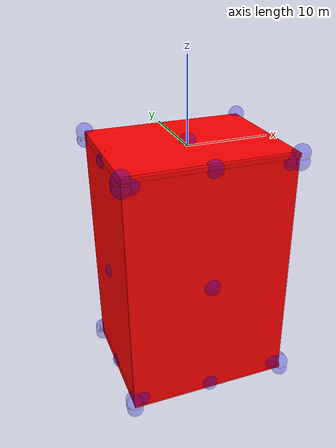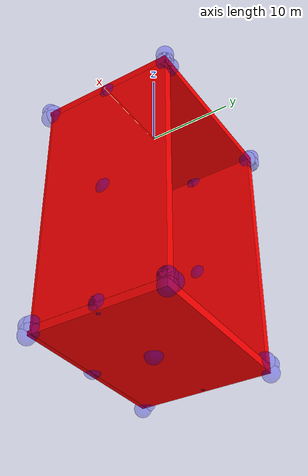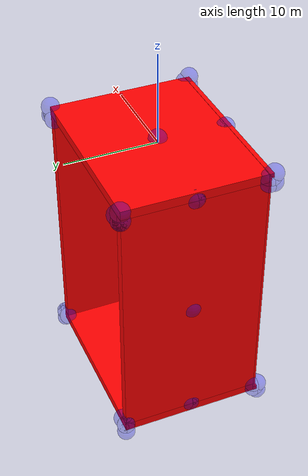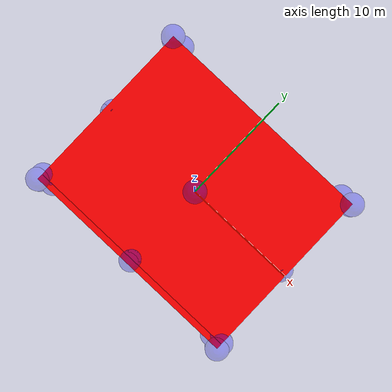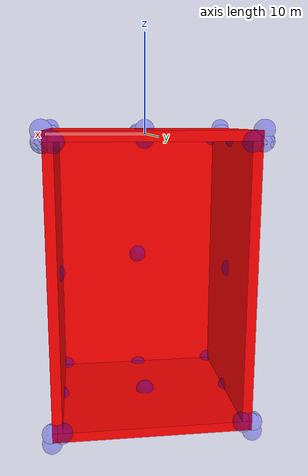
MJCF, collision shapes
<mujoco model="0019_CABINET_AKURUM">
  <asset>
    <mesh file="0.stl" name="part0" scale="1 1 1" />
    <mesh file="4.stl" name="part4" scale="1 1 1" />
    <mesh file="3.stl" name="part3" scale="1 1 1" />
    <mesh file="2.stl" name="part2" scale="1 1 1" />
    <mesh file="1.stl" name="part1" scale="1 1 1" />
  </asset>
  <equality>
    <weld active="false" body1="0_part0" body2="2_part2" solimp="1 1 0.5" solref="0.01 0.3" />
    <weld active="false" body1="0_part0" body2="3_part3" solimp="1 1 0.5" solref="0.01 0.3" />
    <weld active="false" body1="1_part1" body2="2_part2" solimp="1 1 0.5" solref="0.01 0.3" />
    <weld active="false" body1="1_part1" body2="3_part3" solimp="1 1 0.5" solref="0.01 0.3" />
    <weld active="false" body1="0_part0" body2="4_part4" solimp="1 1 0.5" solref="0.01 0.3" />
    <weld active="false" body1="1_part1" body2="4_part4" solimp="1 1 0.5" solref="0.01 0.3" />
  </equality>
  <worldbody>
    <body name="0_part0" pos="0.0 -2e-07 -0.0" quat="1 0 0 0">
      <geom conaffinity="0" contype="0" density="0" mesh="part0" name="0_part0_mesh" pos="0 0 0" rgba="0.82 0.71 0.55 1" type="mesh" />
      <site name="0_part0_horizontal_radius_site" pos="0.0 -2e-07 -0.0" quat="1 0 0 0" rgba="0 0 1 0.3" size="1" />
      <site name="0_part0_top_site" pos="0.0 -1e-07 0.5" quat="1 0 0 0" rgba="0 0 1 0.3" size="1" />
      <site name="0_part0_bottom_site" pos="0.0 -1e-07 -0.5" quat="1 0 0 0" rgba="0 0 1 0.3" size="1" />
      <site name="0_part0_corner_site8" pos="-10.0 8.0 0.5" quat="1 0 0 0" rgba="0 0 1 0.3" size="1" />
      <site name="0_part0_corner_site7" pos="10.0 8.0 0.5" quat="1 0 0 0" rgba="0 0 1 0.3" size="1" />
      <site name="0_part0_corner_site6" pos="10.0 -8.0000003 0.5" quat="1 0 0 0" rgba="0 0 1 0.3" size="1" />
      <site name="0_part0_corner_site5" pos="-10.0 -8.0000003 0.5" quat="1 0 0 0" rgba="0 0 1 0.3" size="1" />
      <site name="0_part0_corner_site4" pos="-10.0 8.0 -0.5" quat="1 0 0 0" rgba="0 0 1 0.3" size="1" />
      <site name="0_part0_corner_site3" pos="10.0 8.0 -0.5" quat="1 0 0 0" rgba="0 0 1 0.3" size="1" />
      <site name="0_part0_corner_site2" pos="10.0 -8.0000003 -0.5" quat="1 0 0 0" rgba="0 0 1 0.3" size="1" />
      <site name="0_part0_corner_site1" pos="-10.0 -8.0000003 -0.5" quat="1 0 0 0" rgba="0 0 1 0.3" size="1" />
      <site name="flat-side,0,180,conn_site4" pos="-9.5 0.125 -0.5" quat="1 0 0 0" rgba="0 0 1 0.3" size="1" />
      <site name="flat-side,0,180,conn_site3" pos="9.45 0.125 -0.5" quat="1 0 0 0" rgba="0 0 1 0.3" size="1" />
      <site name="flat-back,0,conn_site2" pos="0 -7.51 -0.06" quat="0.7071067 0.7071068 0 0" rgba="0 0 1 0.3" size="1" />
      <geom density="50" quat="1 0 0 0" name="noviz_collision_0_part0_0" pos="0 0.28 0.00166" rgba="1 0 0 1" size="10 7.75 0.49" solref="0.001 1" type="box" />
      <geom density="50" quat="1 0 0 0" name="noviz_collision_0_part0_1" pos="0 -7.75 0.22" rgba="1 0 0 1" size="10 0.25 0.25" solref="0.001 1" type="box" />
    </body>
    <body name="4_part4" pos="0.0 -7.6250003 -14.5" quat="1 0 0 0">
      <geom conaffinity="0" contype="0" density="0" mesh="part4" name="4_part4_mesh" pos="0 0 0" rgba="0.82 0.71 0.55 1" type="mesh" />
      <site name="4_part4_horizontal_radius_site" pos="0.0 0.0 0.0" quat="1 0 0 0" rgba="0 0 1 0.3" size="1" />
      <site name="4_part4_top_site" pos="0.0 0.0 14.5" quat="1 0 0 0" rgba="0 0 1 0.3" size="1" />
      <site name="4_part4_bottom_site" pos="0.0 0.0 -14.5" quat="1 0 0 0" rgba="0 0 1 0.3" size="1" />
      <site name="4_part4_corner_site8" pos="-10.0 0.125 14.5" quat="1 0 0 0" rgba="0 0 1 0.3" size="1" />
      <site name="4_part4_corner_site7" pos="10.0 0.125 14.5" quat="1 0 0 0" rgba="0 0 1 0.3" size="1" />
      <site name="4_part4_corner_site6" pos="10.0 -0.125 14.5" quat="1 0 0 0" rgba="0 0 1 0.3" size="1" />
      <site name="4_part4_corner_site5" pos="-10.0 -0.125 14.5" quat="1 0 0 0" rgba="0 0 1 0.3" size="1" />
      <site name="4_part4_corner_site4" pos="-10.0 0.125 -14.5" quat="1 0 0 0" rgba="0 0 1 0.3" size="1" />
      <site name="4_part4_corner_site3" pos="10.0 0.125 -14.5" quat="1 0 0 0" rgba="0 0 1 0.3" size="1" />
      <site name="4_part4_corner_site2" pos="10.0 -0.125 -14.5" quat="1 0 0 0" rgba="0 0 1 0.3" size="1" />
      <site name="4_part4_corner_site1" pos="-10.0 -0.125 -14.5" quat="1 0 0 0" rgba="0 0 1 0.3" size="1" />
      <site name="back-flat,0,conn_site2" pos="0 0.115 14.44" quat="0.7071067 0.7071068 0 0" rgba="0 0 1 0.3" size="1" />
      <site name="back-flat,0,conn_site1" pos="0 0.115 -14.45" quat="0 0 0.7071068 -0.7071067" rgba="0 0 1 0.3" size="1" />
      <geom density="50" quat="1 0 0 0" name="noviz_collision_4_part4_0" pos="0 0 0" rgba="1 0 0 1" size="10 0.125 14.5" solref="0.001 1" type="box" />
    </body>
    <body name="3_part3" pos="9.4999998 0.25 -14.5" quat="1 0 0 0">
      <geom conaffinity="0" contype="0" density="0" mesh="part3" name="3_part3_mesh" pos="0 0 0" rgba="0.82 0.71 0.55 1" type="mesh" />
      <site name="3_part3_horizontal_radius_site" pos="-0.0 0.0 0.0" quat="1 0 0 0" rgba="0 0 1 0.3" size="1" />
      <site name="3_part3_top_site" pos="0.0 0.0 14.0" quat="1 0 0 0" rgba="0 0 1 0.3" size="1" />
      <site name="3_part3_bottom_site" pos="0.0 0.0 -14.0" quat="1 0 0 0" rgba="0 0 1 0.3" size="1" />
      <site name="3_part3_corner_site8" pos="-0.5000002 7.7500005 14.0" quat="1 0 0 0" rgba="0 0 1 0.3" size="1" />
      <site name="3_part3_corner_site7" pos="0.5000002 7.7500005 14.0" quat="1 0 0 0" rgba="0 0 1 0.3" size="1" />
      <site name="3_part3_corner_site6" pos="0.5000002 -7.7500005 14.0" quat="1 0 0 0" rgba="0 0 1 0.3" size="1" />
      <site name="3_part3_corner_site5" pos="-0.5000002 -7.7500005 14.0" quat="1 0 0 0" rgba="0 0 1 0.3" size="1" />
      <site name="3_part3_corner_site4" pos="-0.5000002 7.7500005 -14.0" quat="1 0 0 0" rgba="0 0 1 0.3" size="1" />
      <site name="3_part3_corner_site3" pos="0.5000002 7.7500005 -14.0" quat="1 0 0 0" rgba="0 0 1 0.3" size="1" />
      <site name="3_part3_corner_site2" pos="0.5000002 -7.7500005 -14.0" quat="1 0 0 0" rgba="0 0 1 0.3" size="1" />
      <site name="3_part3_corner_site1" pos="-0.5000002 -7.7500005 -14.0" quat="1 0 0 0" rgba="0 0 1 0.3" size="1" />
      <site name="side-flat,0,180,conn_site3" pos="-0.05 -0.125 14" quat="1 0 0 0" rgba="0 0 1 0.3" size="1" />
      <site name="side-flat,0,180,conn_site1" pos="0.02 -0.125 -14.03" quat="0 0 1 0" rgba="0 0 1 0.3" size="1" />
      <geom density="50" quat="1 0 0 0" name="noviz_collision_3_part3_0" pos="0 0 0" rgba="1 0 0 1" size="0.5 7.75 14" solref="0.001 1" type="box" />
    </body>
    <body name="2_part2" pos="-9.4999997 0.25 -14.5" quat="1 0 0 0">
      <geom conaffinity="0" contype="0" density="0" mesh="part2" name="2_part2_mesh" pos="0 0 0" rgba="0.82 0.71 0.55 1" type="mesh" />
      <site name="2_part2_horizontal_radius_site" pos="-0.0 0.0 -0.0" quat="1 0 0 0" rgba="0 0 1 0.3" size="1" />
      <site name="2_part2_top_site" pos="0.0 0.0 14.0" quat="1 0 0 0" rgba="0 0 1 0.3" size="1" />
      <site name="2_part2_bottom_site" pos="0.0 0.0 -14.0" quat="1 0 0 0" rgba="0 0 1 0.3" size="1" />
      <site name="2_part2_corner_site8" pos="-0.5000003 7.7500005 14.0" quat="1 0 0 0" rgba="0 0 1 0.3" size="1" />
      <site name="2_part2_corner_site7" pos="0.5000003 7.7500005 14.0" quat="1 0 0 0" rgba="0 0 1 0.3" size="1" />
      <site name="2_part2_corner_site6" pos="0.5000003 -7.7500005 14.0" quat="1 0 0 0" rgba="0 0 1 0.3" size="1" />
      <site name="2_part2_corner_site5" pos="-0.5000003 -7.7500005 14.0" quat="1 0 0 0" rgba="0 0 1 0.3" size="1" />
      <site name="2_part2_corner_site4" pos="-0.5000003 7.7500005 -14.0" quat="1 0 0 0" rgba="0 0 1 0.3" size="1" />
      <site name="2_part2_corner_site3" pos="0.5000003 7.7500005 -14.0" quat="1 0 0 0" rgba="0 0 1 0.3" size="1" />
      <site name="2_part2_corner_site2" pos="0.5000003 -7.7500005 -14.0" quat="1 0 0 0" rgba="0 0 1 0.3" size="1" />
      <site name="2_part2_corner_site1" pos="-0.5000003 -7.7500005 -14.0" quat="1 0 0 0" rgba="0 0 1 0.3" size="1" />
      <site name="side-flat,0,180,conn_site4" pos="0 -0.125 14" quat="1 0 0 0" rgba="0 0 1 0.3" size="1" />
      <site name="side-flat,0,180,conn_site2" pos="-0.02 -0.125 -14.03" quat="0 0 1 0" rgba="0 0 1 0.3" size="1" />
      <geom density="50" quat="1 0 0 0" name="noviz_collision_2_part2_0" pos="0 0 0" rgba="1 0 0 1" size="0.5 7.75 14" solref="0.001 1" type="box" />
    </body>
    <body name="1_part1" pos="0.0 -2e-07 -29.0" quat="1 0 0 0">
      <geom conaffinity="0" contype="0" density="0" mesh="part1" name="1_part1_mesh" pos="0 0 0" rgba="0.82 0.71 0.55 1" type="mesh" />
      <site name="1_part1_horizontal_radius_site" pos="0.0 -2e-07 0.0" quat="1 0 0 0" rgba="0 0 1 0.3" size="1" />
      <site name="1_part1_top_site" pos="0.0 -1e-07 0.5" quat="1 0 0 0" rgba="0 0 1 0.3" size="1" />
      <site name="1_part1_bottom_site" pos="0.0 -1e-07 -0.5" quat="1 0 0 0" rgba="0 0 1 0.3" size="1" />
      <site name="1_part1_corner_site8" pos="-10.0 8.0 0.5" quat="1 0 0 0" rgba="0 0 1 0.3" size="1" />
      <site name="1_part1_corner_site7" pos="10.0 8.0 0.5" quat="1 0 0 0" rgba="0 0 1 0.3" size="1" />
      <site name="1_part1_corner_site6" pos="10.0 -8.0000003 0.5" quat="1 0 0 0" rgba="0 0 1 0.3" size="1" />
      <site name="1_part1_corner_site5" pos="-10.0 -8.0000003 0.5" quat="1 0 0 0" rgba="0 0 1 0.3" size="1" />
      <site name="1_part1_corner_site4" pos="-10.0 8.0 -0.5" quat="1 0 0 0" rgba="0 0 1 0.3" size="1" />
      <site name="1_part1_corner_site3" pos="10.0 8.0 -0.5" quat="1 0 0 0" rgba="0 0 1 0.3" size="1" />
      <site name="1_part1_corner_site2" pos="10.0 -8.0000003 -0.5" quat="1 0 0 0" rgba="0 0 1 0.3" size="1" />
      <site name="1_part1_corner_site1" pos="-10.0 -8.0000003 -0.5" quat="1 0 0 0" rgba="0 0 1 0.3" size="1" />
      <site name="flat-side,0,180,conn_site2" pos="-9.52 0.125 0.47" quat="0 0 1 0" rgba="0 0 1 0.3" size="1" />
      <site name="flat-side,0,180,conn_site1" pos="9.52 0.125 0.47" quat="0 0 1 0" rgba="0 0 1 0.3" size="1" />
      <site name="flat-back,0,conn_site1" pos="0 -7.51 0.05" quat="0 0 0.7071068 -0.7071067" rgba="0 0 1 0.3" size="1" />
      <geom density="50" quat="1 0 0 0" name="noviz_collision_1_part1_0" pos="0 0.25 -0.00166" rgba="1 0 0 1" size="10 7.75 0.49" solref="0.001 1" type="box" />
      <geom density="50" quat="1 0 0 0" name="noviz_collision_1_part1_1" pos="0 -7.76 -0.26" rgba="1 0 0 1" size="10 0.25 0.25" solref="0.001 1" type="box" />
    </body>
  </worldbody>
</mujoco>
